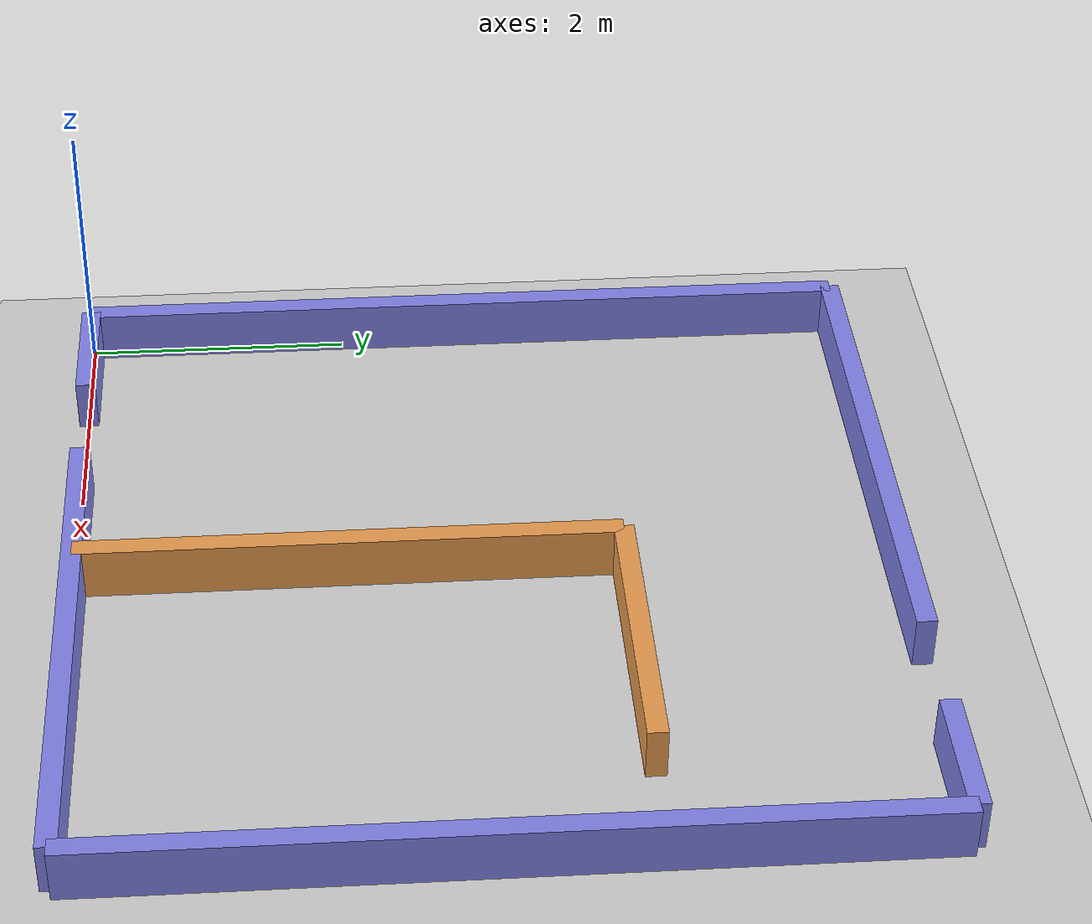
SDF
<?xml version="1.0" ?>
<sdf version="1.6">
  <world name="maze_world">

    <!-- 地面与太阳光（Gazebo 自带模型） -->
    <include>
      <uri>model://ground_plane</uri>
    </include>
    <include>
      <uri>model://sun</uri>
    </include>

    <!-- 迷宫围墙：一个静态模型，所有墙体是它的 link（static 不受力、不参与动力学，性能好） -->
    <model name="maze_walls">
      <static>true</static>

      <!-- 外墙-南-西段（入口左侧） -->
      <link name="wall_south_w">
        <pose>0.5 0 0.2 0 0 0</pose>
        <collision name="c"><geometry><box><size>1.0 0.15 0.4</size></box></geometry></collision>
        <visual name="v"><geometry><box><size>1.0 0.15 0.4</size></box></geometry>
          <material><ambient>0.4 0.4 0.8 1</ambient><diffuse>0.5 0.5 0.9 1</diffuse></material>
        </visual>
      </link>

      <!-- 外墙-南-东段（入口右侧） -->
      <link name="wall_south_e">
        <pose>3.9 0 0.2 0 0 0</pose>
        <collision name="c"><geometry><box><size>4.2 0.15 0.4</size></box></geometry></collision>
        <visual name="v"><geometry><box><size>4.2 0.15 0.4</size></box></geometry>
          <material><ambient>0.4 0.4 0.8 1</ambient><diffuse>0.5 0.5 0.9 1</diffuse></material>
        </visual>
      </link>

      <!-- 外墙-北-西段（出口左侧） -->
      <link name="wall_north_w">
        <pose>2.1 6 0.2 0 0 0</pose>
        <collision name="c"><geometry><box><size>4.2 0.15 0.4</size></box></geometry></collision>
        <visual name="v"><geometry><box><size>4.2 0.15 0.4</size></box></geometry>
          <material><ambient>0.4 0.4 0.8 1</ambient><diffuse>0.5 0.5 0.9 1</diffuse></material>
        </visual>
      </link>

      <!-- 外墙-北-东段（出口右侧） -->
      <link name="wall_north_e">
        <pose>5.5 6 0.2 0 0 0</pose>
        <collision name="c"><geometry><box><size>1.0 0.15 0.4</size></box></geometry></collision>
        <visual name="v"><geometry><box><size>1.0 0.15 0.4</size></box></geometry>
          <material><ambient>0.4 0.4 0.8 1</ambient><diffuse>0.5 0.5 0.9 1</diffuse></material>
        </visual>
      </link>

      <!-- 外墙-西 -->
      <link name="wall_west">
        <pose>0 3 0.2 0 0 0</pose>
        <collision name="c"><geometry><box><size>0.15 6.0 0.4</size></box></geometry></collision>
        <visual name="v"><geometry><box><size>0.15 6.0 0.4</size></box></geometry>
          <material><ambient>0.4 0.4 0.8 1</ambient><diffuse>0.5 0.5 0.9 1</diffuse></material>
        </visual>
      </link>

      <!-- 外墙-东 -->
      <link name="wall_east">
        <pose>6 3 0.2 0 0 0</pose>
        <collision name="c"><geometry><box><size>0.15 6.0 0.4</size></box></geometry></collision>
        <visual name="v"><geometry><box><size>0.15 6.0 0.4</size></box></geometry>
          <material><ambient>0.4 0.4 0.8 1</ambient><diffuse>0.5 0.5 0.9 1</diffuse></material>
        </visual>
      </link>

      <!-- 内墙 W1：竖墙 x=3，与南墙相连 -->
      <link name="wall_inner_v">
        <pose>3.0 2.0 0.2 0 0 0</pose>
        <collision name="c"><geometry><box><size>0.15 4.0 0.4</size></box></geometry></collision>
        <visual name="v"><geometry><box><size>0.15 4.0 0.4</size></box></geometry>
          <material><ambient>0.8 0.5 0.2 1</ambient><diffuse>0.9 0.6 0.3 1</diffuse></material>
        </visual>
      </link>

      <!-- 内墙 W2：横墙 y=4，与 W1 相连 -->
      <link name="wall_inner_h">
        <pose>4.1 4.0 0.2 0 0 0</pose>
        <collision name="c"><geometry><box><size>2.2 0.15 0.4</size></box></geometry></collision>
        <visual name="v"><geometry><box><size>2.2 0.15 0.4</size></box></geometry>
          <material><ambient>0.8 0.5 0.2 1</ambient><diffuse>0.9 0.6 0.3 1</diffuse></material>
        </visual>
      </link>

    </model>
  </world>
</sdf>
